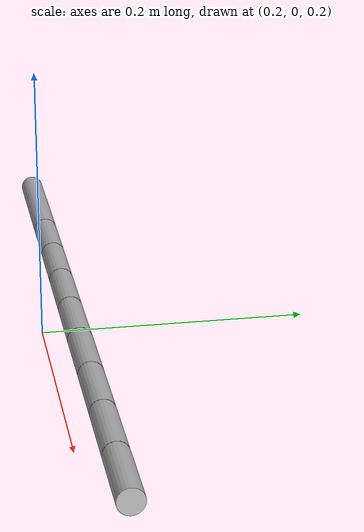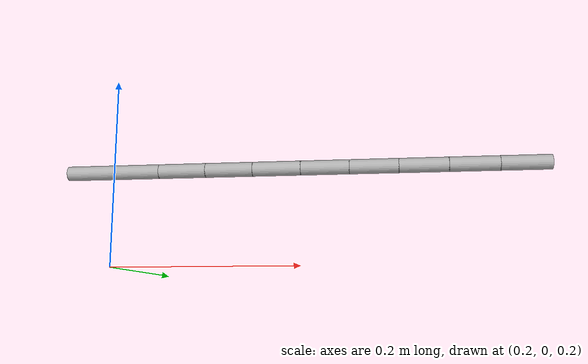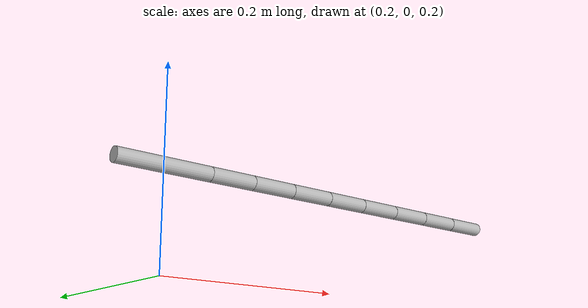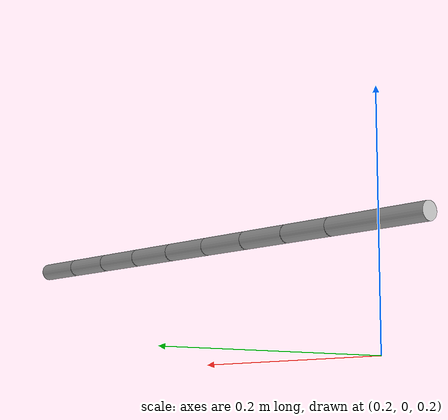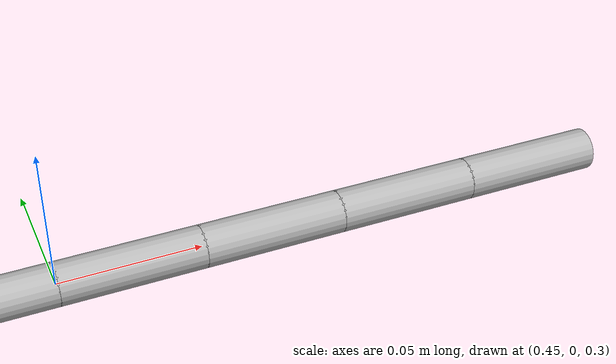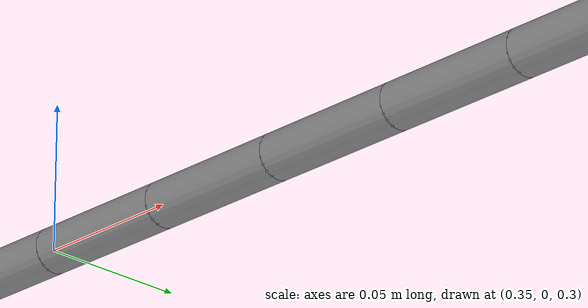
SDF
<?xml version="1.0" ?>
<sdf version="1.5">
  <model name="cable_test">
    <pose>0.2 0 0.3 0 0 0</pose>
        <joint name="joint_world" type="revolute">
      <child>plug</child>
      <parent>world</parent>
      <axis>
        <xyz>0.00 0.00 1.000</xyz>
        <dynamics>
          <damping>10.000000</damping>
          <friction>0.000000</friction>
        </dynamics>
        <use_parent_model_frame>true</use_parent_model_frame>
      </axis>
    </joint>
       <link name="plug">
      <pose>0.000000 0.000000 0.000000 0.000000 1.570796 0.000000</pose>
      <inertial>
        <pose>0.000000 0.000000 0.000000 0.000000 0.000000 0.000000</pose>
        <mass>0.10000</mass>
        <inertia>
          <ixx>0.010000</ixx>
          <ixy>0.000000</ixy>
          <ixz>0.000000</ixz>
          <iyy>0.010000</iyy>
          <iyz>0.000000</iyz>
          <izz>0.010000</izz>
        </inertia>
      </inertial>
      <collision name="plug_collision">
        <pose>-0.000000 0.000000 0.000000 0.000000 0.000000 0.000000</pose>
        <geometry>
          <cylinder>
            <radius>0.007500</radius>
            <length>0.1</length>
          </cylinder>
        </geometry>
      </collision>
      <visual name="plug_vis">
        <pose>-0.000000 0.000000 0.000000 0.000000 0.000000 0.000000</pose>
        <geometry>
          <cylinder>
            <radius>0.007500</radius>
            <length>0.1</length>
          </cylinder>
        </geometry>
      </visual>
      <velocity_decay />
    </link>

    <link name="sphere_01">
      <gravity>false</gravity>
      <pose>0.0500000 0.000000 0.000000 0.000000 -0.000000 0.000000</pose>
      <inertial>
        <pose>0.000000 0.000000 0.000000 0.000000 -0.000000 0.000000</pose>
        <mass>0.100000</mass>
        <inertia>
          <ixx>0.010000</ixx>
          <ixy>0.000000</ixy>
          <ixz>0.000000</ixz>
          <iyy>0.010000</iyy>
          <iyz>0.000000</iyz>
          <izz>0.010000</izz>
        </inertia>
      </inertial>
      <collision name="sphere_02_collision">
        <pose>0.000000 0.000000 0.000000 0.000000 -0.000000 0.000000</pose>
        <geometry>
          <sphere>
            <radius>0.007500</radius>
          </sphere>
        </geometry>
      </collision>
      <visual name="sphere_02_vis">
        <pose>0.000000 0.000000 0.000000 0.000000 -0.000000 0.000000</pose>
        <geometry>
          <sphere>
            <radius>0.007500</radius>
          </sphere>
        </geometry>
      </visual>
      <velocity_decay />
    </link>
    <joint name="joint_plug" type="fixed">
      <child>plug</child>
      <parent>sphere_01</parent>
      <axis>
        <xyz>0.000000 0.000000 1.000000</xyz>
        <limit>
          <lower>0.00000</lower>
          <upper>0.01000</upper>
        </limit>
        <dynamics>
          <damping>10.000000</damping>
          <friction>0.000000</friction>
        </dynamics>
        <use_parent_model_frame>true</use_parent_model_frame>
      </axis>
    </joint>
    <link name="link_01">
      <pose>0.050000 0.000000 0.000000 0.000000 -0.000000 0.000000</pose>
      <inertial>
        <pose>0.000000 0.000000 0.000000 0.000000 -0.000000 0.000000</pose>
        <mass>0.100000</mass>
        <inertia>
          <ixx>0.010000</ixx>
          <ixy>0.000000</ixy>
          <ixz>0.000000</ixz>
          <iyy>0.010000</iyy>
          <iyz>0.000000</iyz>
          <izz>0.010000</izz>
        </inertia>
      </inertial>
      <collision name="link_01_collision">
        <pose>0.025000 0.000000 0.000000 0.000000 1.570790 0.000000</pose>
        <geometry>
          <cylinder>
            <length>0.050000</length>
            <radius>0.007500</radius>
          </cylinder>
        </geometry>
      </collision>
      <visual name="link_01_vis">
        <pose>0.025000 0.000000 0.000000 0.000000 1.570790 0.000000</pose>
        <geometry>
          <cylinder>
            <length>0.050000</length>
            <radius>0.007500</radius>
          </cylinder>
        </geometry>
      </visual>
      <velocity_decay />
    </link>
    <joint name="joint_01_2" type="revolute">
      <child>link_01</child>
      <parent>sphere_01</parent>
      <axis>
        <xyz>0.000000 0.000000 1.000000</xyz>
        <limit>
          <lower>0.00000</lower>
          <upper>0.01000</upper>
        </limit>
        <dynamics>
          <damping>10.000000</damping>
          <friction>0.000000</friction>
        </dynamics>
        <use_parent_model_frame>true</use_parent_model_frame>
      </axis>
    </joint>
    <link name="sphere_02">
      <gravity>false</gravity>
      <pose>0.100000 0.000000 0.000000 0.000000 -0.000000 0.000000</pose>
      <inertial>
        <pose>0.000000 0.000000 0.000000 0.000000 -0.000000 0.000000</pose>
        <mass>0.100000</mass>
        <inertia>
          <ixx>0.010000</ixx>
          <ixy>0.000000</ixy>
          <ixz>0.000000</ixz>
          <iyy>0.010000</iyy>
          <iyz>0.000000</iyz>
          <izz>0.010000</izz>
        </inertia>
      </inertial>
      <collision name="sphere_02_collision">
        <pose>0.000000 0.000000 0.000000 0.000000 -0.000000 0.000000</pose>
        <geometry>
          <sphere>
            <radius>0.007500</radius>
          </sphere>
        </geometry>
      </collision>
      <visual name="sphere_02_vis">
        <pose>0.000000 0.000000 0.000000 0.000000 -0.000000 0.000000</pose>
        <geometry>
          <sphere>
            <radius>0.007500</radius>
          </sphere>
        </geometry>
      </visual>
      <velocity_decay />
    </link>
    <joint name="joint_02_1" type="fixed">
      <child>sphere_02</child>
      <parent>link_01</parent>
      <axis>
        <xyz>0.000000 0.000000 1.000000</xyz>
        <limit>
          <lower>0.000</lower>
          <upper>0.01000</upper>
        </limit>
        <dynamics>
          <damping>10.000000</damping>
          <friction>0.000000</friction>
        </dynamics>
        <use_parent_model_frame>true</use_parent_model_frame>
      </axis>
    </joint>
    <link name="link_02">

      <pose>0.100000 0.000000 0.000000 0.000000 -0.000000 0.000000</pose>
      <inertial>
        <pose>0.000000 0.000000 0.000000 0.000000 -0.000000 0.000000</pose>
        <mass>0.100000</mass>
        <inertia>
          <ixx>0.010000</ixx>
          <ixy>0.000000</ixy>
          <ixz>0.000000</ixz>
          <iyy>0.010000</iyy>
          <iyz>0.000000</iyz>
          <izz>0.010000</izz>
        </inertia>
      </inertial>
      <collision name="link_02_collision">
        <pose>0.025000 0.000000 0.000000 0.000000 1.570790 0.000000</pose>
        <geometry>
          <cylinder>
            <length>0.050000</length>
            <radius>0.007500</radius>
          </cylinder>
        </geometry>
      </collision>
      <visual name="link_02_vis">
        <pose>0.025000 0.000000 0.000000 0.000000 1.570790 0.000000</pose>
        <geometry>
          <cylinder>
            <length>0.050000</length>
            <radius>0.007500</radius>
          </cylinder>
        </geometry>
      </visual>
      <velocity_decay />
    </link>
    <joint name="joint_02_2" type="revolute">
      <child>link_02</child>
      <parent>sphere_02</parent>
      <axis>
        <xyz>0.000000 0.000000 1.000000</xyz>
        <dynamics>
          <damping>1.75954</damping>
          <friction>0.000000</friction>
	  <spring_stiffness>0.557738</spring_stiffness>
        </dynamics>
        <use_parent_model_frame>true</use_parent_model_frame>
      </axis>
    </joint>
    <link name="sphere_03">
      <gravity>false</gravity>
      <pose>0.150000 0.000000 0.000000 0.000000 -0.000000 0.000000</pose>
      <inertial>
        <pose>0.000000 0.000000 0.000000 0.000000 -0.000000 0.000000</pose>
        <mass>0.100000</mass>
        <inertia>
          <ixx>0.010000</ixx>
          <ixy>0.000000</ixy>
          <ixz>0.000000</ixz>
          <iyy>0.010000</iyy>
          <iyz>0.000000</iyz>
          <izz>0.010000</izz>
        </inertia>
      </inertial>
      <collision name="sphere_03_collision">
        <pose>0.000000 0.000000 0.000000 0.000000 -0.000000 0.000000</pose>
        <geometry>
          <sphere>
            <radius>0.007500</radius>
          </sphere>
        </geometry>
      </collision>
      <visual name="sphere_03_vis">
        <pose>0.000000 0.000000 0.000000 0.000000 -0.000000 0.000000</pose>
        <geometry>
          <sphere>
            <radius>0.007500</radius>
          </sphere>
        </geometry>
      </visual>
      <velocity_decay />
    </link>
    <joint name="joint_03_1" type="fixed">
      <child>sphere_03</child>
      <parent>link_02</parent>
      <axis>
        <xyz>0.000000 0.000000 1.000000</xyz>
        <dynamics>
          <damping>1.75954</damping>
          <friction>0.000000</friction>
	  <spring_stiffness>0.557738</spring_stiffness>
        </dynamics>
        <use_parent_model_frame>true</use_parent_model_frame>
      </axis>
    </joint>
    <link name="link_03">

      <pose>0.150000 0.000000 0.000000 0.000000 -0.000000 0.000000</pose>
      <inertial>
        <pose>0.000000 0.000000 0.000000 0.000000 -0.000000 0.000000</pose>
        <mass>0.100000</mass>
        <inertia>
          <ixx>0.010000</ixx>
          <ixy>0.000000</ixy>
          <ixz>0.000000</ixz>
          <iyy>0.010000</iyy>
          <iyz>0.000000</iyz>
          <izz>0.010000</izz>
        </inertia>
      </inertial>
      <collision name="link_03_collision">
        <pose>0.025000 0.000000 0.000000 0.000000 1.570790 0.000000</pose>
        <geometry>
          <cylinder>
            <length>0.050000</length>
            <radius>0.007500</radius>
          </cylinder>
        </geometry>
      </collision>
      <visual name="link_03_vis">
        <pose>0.025000 0.000000 0.000000 0.000000 1.570790 0.000000</pose>
        <geometry>
          <cylinder>
            <length>0.050000</length>
            <radius>0.007500</radius>
          </cylinder>
        </geometry>
      </visual>
      <velocity_decay />
    </link>
    <joint name="joint_03_2" type="revolute">
      <child>link_03</child>
      <parent>sphere_03</parent>
      <axis>
        <xyz>0.000000 0.000000 1.000000</xyz>
        <dynamics>
          <damping>3.5445</damping>
          <friction>0.000000</friction>
	  <spring_stiffness>0.906265</spring_stiffness>
        </dynamics>
        <use_parent_model_frame>true</use_parent_model_frame>
      </axis>
    </joint>
    <link name="sphere_04">
      <gravity>false</gravity>
      <pose>0.200000 0.000000 0.000000 0.000000 -0.000000 0.000000</pose>
      <inertial>
        <pose>0.000000 0.000000 0.000000 0.000000 -0.000000 0.000000</pose>
        <mass>0.100000</mass>
        <inertia>
          <ixx>0.010000</ixx>
          <ixy>0.000000</ixy>
          <ixz>0.000000</ixz>
          <iyy>0.010000</iyy>
          <iyz>0.000000</iyz>
          <izz>0.010000</izz>
        </inertia>
      </inertial>
      <collision name="sphere_04_collision">
        <pose>0.000000 0.000000 0.000000 0.000000 -0.000000 0.000000</pose>
        <geometry>
          <sphere>
            <radius>0.007500</radius>
          </sphere>
        </geometry>
      </collision>
      <visual name="sphere_04_vis">
        <pose>0.000000 0.000000 0.000000 0.000000 -0.000000 0.000000</pose>
        <geometry>
          <sphere>
            <radius>0.007500</radius>
          </sphere>
        </geometry>
      </visual>
      <velocity_decay />
    </link>
    <joint name="joint_04_1" type="fixed">
      <child>sphere_04</child>
      <parent>link_03</parent>
      <axis>
        <xyz>0.000000 0.000000 1.000000</xyz>
        <limit>
          <lower>0.0000</lower>
          <upper>0.01000</upper>
        </limit>
        <dynamics>
          <damping>10.000000</damping>
          <friction>0.000000</friction>
        </dynamics>
        <use_parent_model_frame>true</use_parent_model_frame>
      </axis>
    </joint>
    <link name="link_04">
      <pose>0.200000 0.000000 0.000000 0.000000 -0.000000 0.000000</pose>
      <inertial>
        <pose>0.000000 0.000000 0.000000 0.000000 -0.000000 0.000000</pose>
        <mass>0.0100000</mass>
        <inertia>
          <ixx>0.010000</ixx>
          <ixy>0.000000</ixy>
          <ixz>0.000000</ixz>
          <iyy>0.010000</iyy>
          <iyz>0.000000</iyz>
          <izz>0.010000</izz>
        </inertia>
      </inertial>
      <collision name="link_04_collision">
        <pose>0.025000 0.000000 0.000000 0.000000 1.570790 0.000000</pose>
        <geometry>
          <cylinder>
            <length>0.050000</length>
            <radius>0.007500</radius>
          </cylinder>
        </geometry>
      </collision>
      <visual name="link_04_vis">
        <pose>0.025000 0.000000 0.000000 0.000000 1.570790 0.000000</pose>
        <geometry>
          <cylinder>
            <length>0.050000</length>
            <radius>0.007500</radius>
          </cylinder>
        </geometry>
      </visual>
      <velocity_decay />
    </link>
    <joint name="joint_04_2" type="revolute">
      <child>link_04</child>
      <parent>sphere_04</parent>
      <axis>
        <xyz>0.000000 0.000000 1.000000</xyz>
        <dynamics>
          <damping>6.31788</damping>
          <friction>0.000000</friction>
          <spring_stiffness>0.675703</spring_stiffness>
        </dynamics>
        <use_parent_model_frame>true</use_parent_model_frame>
      </axis>
    </joint>
    <link name="sphere_05">
      <gravity>false</gravity>
      <pose>0.250000 0.000000 0.000000 0.000000 -0.000000 0.000000</pose>
      <inertial>
        <pose>0.000000 0.000000 0.000000 0.000000 -0.000000 0.000000</pose>
        <mass>0.100000</mass>
        <inertia>
          <ixx>0.010000</ixx>
          <ixy>0.000000</ixy>
          <ixz>0.000000</ixz>
          <iyy>0.010000</iyy>
          <iyz>0.000000</iyz>
          <izz>0.010000</izz>
        </inertia>
      </inertial>
      <collision name="sphere_05_collision">
        <pose>0.000000 0.000000 0.000000 0.000000 -0.000000 0.000000</pose>
        <geometry>
          <sphere>
            <radius>0.007500</radius>
          </sphere>
        </geometry>
      </collision>
      <visual name="sphere_05_vis">
        <pose>0.000000 0.000000 0.000000 0.000000 -0.000000 0.000000</pose>
        <geometry>
          <sphere>
            <radius>0.007500</radius>
          </sphere>
        </geometry>
      </visual>
      <velocity_decay />
    </link>
    <joint name="joint_05_1" type="fixed">
      <child>sphere_05</child>
      <parent>link_04</parent>
      <axis>
        <xyz>0.000000 0.000000 1.000000</xyz>
        <limit>
          <lower>-0.00000</lower>
          <upper>0.01000</upper>
        </limit>
        <dynamics>
          <damping>10.000000</damping>
          <friction>0.000000</friction>
        </dynamics>
        <use_parent_model_frame>true</use_parent_model_frame>
      </axis>
    </joint>
    <link name="link_05">
      <pose>0.250000 0.000000 0.000000 0.000000 -0.000000 0.000000</pose>
      <inertial>
        <pose>0.000000 0.000000 0.000000 0.000000 -0.000000 0.000000</pose>
        <mass>0.0100000</mass>
        <inertia>
          <ixx>0.010000</ixx>
          <ixy>0.000000</ixy>
          <ixz>0.000000</ixz>
          <iyy>0.010000</iyy>
          <iyz>0.000000</iyz>
          <izz>0.010000</izz>
        </inertia>
      </inertial>
      <collision name="link_05_collision">
        <pose>0.025000 0.000000 0.000000 0.000000 1.570790 0.000000</pose>
        <geometry>
          <cylinder>
            <length>0.050000</length>
            <radius>0.007500</radius>
          </cylinder>
        </geometry>
      </collision>
      <visual name="link_05_vis">
        <pose>0.025000 0.000000 0.000000 0.000000 1.570790 0.000000</pose>
        <geometry>
          <cylinder>
            <length>0.050000</length>
            <radius>0.007500</radius>
          </cylinder>
        </geometry>
      </visual>
      <velocity_decay />
    </link>
    <joint name="joint_05_2" type="revolute">
      <child>link_05</child>
      <parent>sphere_05</parent>
      <axis>
        <xyz>0.000000 0.000000 1.000000</xyz>
        <dynamics>
          <damping>7.02696</damping>
          <friction>0.000000</friction>
          <spring_stiffness>0.710039</spring_stiffness>
        </dynamics>
        <use_parent_model_frame>true</use_parent_model_frame>
      </axis>
    </joint>
    <link name="sphere_06">
      <gravity>false</gravity>
      <pose>0.300000 0.000000 0.000000 0.000000 -0.000000 0.000000</pose>
      <inertial>
        <pose>0.000000 0.000000 0.000000 0.000000 -0.000000 0.000000</pose>
        <mass>0.100000</mass>
        <inertia>
          <ixx>0.010000</ixx>
          <ixy>0.000000</ixy>
          <ixz>0.000000</ixz>
          <iyy>0.010000</iyy>
          <iyz>0.000000</iyz>
          <izz>0.010000</izz>
        </inertia>
      </inertial>
      <collision name="sphere_06_collision">
        <pose>0.000000 0.000000 0.000000 0.000000 -0.000000 0.000000</pose>
        <geometry>
          <sphere>
            <radius>0.007500</radius>
          </sphere>
        </geometry>
      </collision>
      <visual name="sphere_06_vis">
        <pose>0.000000 0.000000 0.000000 0.000000 -0.000000 0.000000</pose>
        <geometry>
          <sphere>
            <radius>0.007500</radius>
          </sphere>
        </geometry>
      </visual>
      <velocity_decay />
    </link>
    <joint name="joint_06_1" type="fixed">
      <child>sphere_06</child>
      <parent>link_05</parent>
      <axis>
        <xyz>0.000000 0.000000 1.000000</xyz>
        <limit>
          <lower>-0.000000</lower>
          <upper>0.01000</upper>
        </limit>
        <dynamics>
          <damping>10.000000</damping>
          <friction>0.000000</friction>
        </dynamics>
        <use_parent_model_frame>true</use_parent_model_frame>
      </axis>
    </joint>
    <link name="link_06">
      <pose>0.300000 0.000000 0.000000 0.000000 -0.000000 0.000000</pose>
      <inertial>
        <pose>0.000000 0.000000 0.000000 0.000000 -0.000000 0.000000</pose>
        <mass>0.0100000</mass>
        <inertia>
          <ixx>0.010000</ixx>
          <ixy>0.000000</ixy>
          <ixz>0.000000</ixz>
          <iyy>0.010000</iyy>
          <iyz>0.000000</iyz>
          <izz>0.010000</izz>
        </inertia>
      </inertial>
      <collision name="link_06_collision">
        <pose>0.025000 0.000000 0.000000 0.000000 1.570790 0.000000</pose>
        <geometry>
          <cylinder>
            <length>0.050000</length>
            <radius>0.007500</radius>
          </cylinder>
        </geometry>
      </collision>
      <visual name="link_06_vis">
        <pose>0.025000 0.000000 0.000000 0.000000 1.570790 0.000000</pose>
        <geometry>
          <cylinder>
            <length>0.050000</length>
            <radius>0.007500</radius>
          </cylinder>
        </geometry>
      </visual>
      <velocity_decay />
    </link>
    <joint name="joint_06_2" type="revolute">
      <child>link_06</child>
      <parent>sphere_06</parent>
      <axis>
        <xyz>0.000000 0.000000 1.000000</xyz>
        <limit>
          <lower>-0.000000</lower>
          <upper>0.01000</upper>
        </limit>
        <dynamics>
          <damping>10.000000</damping>
          <friction>0.000000</friction>
        </dynamics>
        <use_parent_model_frame>true</use_parent_model_frame>
      </axis>
    </joint>
    <link name="sphere_07">
      <gravity>false</gravity>
      <pose>0.350000 0.000000 0.000000 0.000000 -0.000000 0.000000</pose>
      <inertial>
        <pose>0.000000 0.000000 0.000000 0.000000 -0.000000 0.000000</pose>
        <mass>0.100000</mass>
        <inertia>
          <ixx>0.010000</ixx>
          <ixy>0.000000</ixy>
          <ixz>0.000000</ixz>
          <iyy>0.010000</iyy>
          <iyz>0.000000</iyz>
          <izz>0.010000</izz>
        </inertia>
      </inertial>
      <collision name="sphere_07_collision">
        <pose>0.000000 0.000000 0.000000 0.000000 -0.000000 0.000000</pose>
        <geometry>
          <sphere>
            <radius>0.007500</radius>
          </sphere>
        </geometry>
      </collision>
      <visual name="sphere_07_vis">
        <pose>0.000000 0.000000 0.000000 0.000000 -0.000000 0.000000</pose>
        <geometry>
          <sphere>
            <radius>0.007500</radius>
          </sphere>
        </geometry>
      </visual>
      <velocity_decay />
    </link>
    <joint name="joint_07_1" type="fixed">
      <child>sphere_07</child>
      <parent>link_06</parent>
      <axis>
        <xyz>0.000000 0.000000 1.000000</xyz>
        <limit>
          <lower>-0.005000</lower>
          <upper>0.00000</upper>
        </limit>
        <dynamics>
          <damping>10.000000</damping>
          <friction>0.000000</friction>
        </dynamics>
        <use_parent_model_frame>true</use_parent_model_frame>
      </axis>
    </joint>
    <link name="link_07">

      <pose>0.350000 0.000000 0.000000 0.000000 -0.000000 0.000000</pose>
      <inertial>
        <pose>0.000000 0.000000 0.000000 0.000000 -0.000000 0.000000</pose>
        <mass>0.0100000</mass>
        <inertia>
          <ixx>0.010000</ixx>
          <ixy>0.000000</ixy>
          <ixz>0.000000</ixz>
          <iyy>0.010000</iyy>
          <iyz>0.000000</iyz>
          <izz>0.010000</izz>
        </inertia>
      </inertial>
      <collision name="link_07_collision">
        <pose>0.025000 0.000000 0.000000 0.000000 1.570790 0.000000</pose>
        <geometry>
          <cylinder>
            <length>0.050000</length>
            <radius>0.007500</radius>
          </cylinder>
        </geometry>
      </collision>
      <visual name="link_07_vis">
        <pose>0.025000 0.000000 0.000000 0.000000 1.570790 0.000000</pose>
        <geometry>
          <cylinder>
            <length>0.050000</length>
            <radius>0.007500</radius>
          </cylinder>
        </geometry>
      </visual>
      <velocity_decay />
    </link>
    <joint name="joint_07_2" type="revolute">
      <child>link_07</child>
      <parent>sphere_07</parent>
      <axis>
        <xyz>0.000000 0.000000 1.000000</xyz>
        <limit>
          <lower>-0.500000</lower>
          <upper>0.00000</upper>
        </limit>
        <dynamics>
          <damping>10.000000</damping>
          <friction>0.000000</friction>
        </dynamics>
        <use_parent_model_frame>true</use_parent_model_frame>
      </axis>
    </joint>
     <link name="sphere_08">
      <gravity>false</gravity>
      <pose>0.400000 0.000000 0.000000 0.000000 -0.000000 0.000000</pose>
      <inertial>
        <pose>0.000000 0.000000 0.000000 0.000000 -0.000000 0.000000</pose>
        <mass>0.100000</mass>
        <inertia>
          <ixx>0.010000</ixx>
          <ixy>0.000000</ixy>
          <ixz>0.000000</ixz>
          <iyy>0.010000</iyy>
          <iyz>0.000000</iyz>
          <izz>0.010000</izz>
        </inertia>
      </inertial>
      <collision name="sphere_08_collision">
        <pose>0.000000 0.000000 0.000000 0.000000 -0.000000 0.000000</pose>
        <geometry>
          <sphere>
            <radius>0.007500</radius>
          </sphere>
        </geometry>
      </collision>
      <visual name="sphere_08_vis">
        <pose>0.000000 0.000000 0.000000 0.000000 -0.000000 0.000000</pose>
        <geometry>
          <sphere>
            <radius>0.007500</radius>
          </sphere>
        </geometry>
      </visual>
      <velocity_decay />
    </link>
    <joint name="joint_08_1" type="fixed">
      <child>sphere_08</child>
      <parent>link_07</parent>
      <axis>
        <xyz>0.000000 0.000000 1.000000</xyz>
        <limit>
          <lower>-0.005000</lower>
          <upper>0.00000</upper>
        </limit>
        <dynamics>
          <damping>10.000000</damping>
          <friction>0.000000</friction>
        </dynamics>
        <use_parent_model_frame>true</use_parent_model_frame>
      </axis>
    </joint>

    <link name="link_08">
      <pose>0.400000 0.000000 0.000000 0.000000 -0.000000 0.000000</pose>
      <inertial>
        <pose>0.000000 0.000000 0.000000 0.000000 -0.000000 0.000000</pose>
        <mass>0.0100000</mass>
        <inertia>
          <ixx>0.010000</ixx>
          <ixy>0.000000</ixy>
          <ixz>0.000000</ixz>
          <iyy>0.010000</iyy>
          <iyz>0.000000</iyz>
          <izz>0.010000</izz>
        </inertia>
      </inertial>
      <collision name="link_08_collision">
        <pose>0.025000 0.000000 0.000000 0.000000 1.570790 0.000000</pose>
        <geometry>
          <cylinder>
            <length>0.050000</length>
            <radius>0.007500</radius>
          </cylinder>
        </geometry>
      </collision>
      <visual name="link_08_vis">
        <pose>0.025000 0.000000 0.000000 0.000000 1.570790 0.000000</pose>
        <geometry>
          <cylinder>
            <length>0.050000</length>
            <radius>0.007500</radius>
          </cylinder>
        </geometry>
      </visual>
      <velocity_decay />
    </link>
     <joint name="joint_08_2" type="revolute">
      <child>link_08</child>
      <parent>sphere_08</parent>
      <axis>
        <xyz>0.000000 0.000000 1.000000</xyz>
        <limit>
          <lower>-0.500000</lower>
          <upper>0.00000</upper>
        </limit>
        <dynamics>
          <damping>10.000000</damping>
          <friction>0.000000</friction>
        </dynamics>
        <use_parent_model_frame>true</use_parent_model_frame>
      </axis>
    </joint>
    <joint name="joint_end" type="fixed">
      <child>sphere_08</child>
      <parent>world</parent>
      <axis>
        <xyz>0.00000 0.000000 1.00000</xyz>
        <dynamics>
          <damping>10.000000</damping>
          <friction>0.000000</friction>
        </dynamics>
        <use_parent_model_frame>true</use_parent_model_frame>
      </axis>
    </joint>

  </model>
</sdf>
